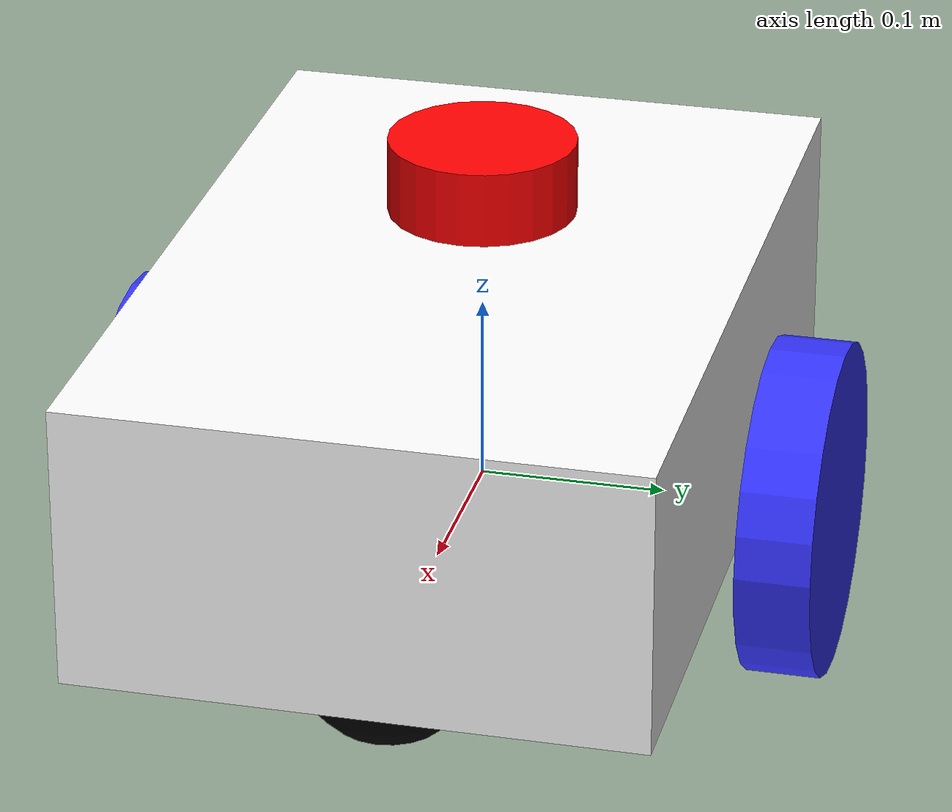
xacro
<?xml version="1.0"?>
<robot xmlns:xacro="http://www.ros.org/wiki/xacro"  name="robot">

    <xacro:arg name="use_ros2_control" default="true"/>
    <xacro:arg name="sim_mode" default="false"/>

    <xacro:include filename="robot_core.xacro" />
    <xacro:include filename="lidar.xacro" />

    <!-- selecting what to run Gazebo or reak robot-->

    <xacro:if value="$(arg use_ros2_control)">
        <xacro:include filename="ros2_control.xacro" />
    </xacro:if>
    <!--Basic Gazebo control without ros2_control -->
    <xacro:unless value="$(arg use_ros2_control)">
        <xacro:include filename="gazebo_control.xacro" />
    </xacro:unless>

</robot>

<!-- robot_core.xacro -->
<robot xmlns:xacro="http://www.ros.org/wiki/xacro" >

    <xacro:include filename="inertial_macros.xacro"/>

<!--Parameters-->
    <xacro:property name="wheel_radius" value="0.09" />`

    <material name="white">
        <color rgba="1 1 1 1" />
    </material>

    <material name="orange">
        <color rgba="1 0.3 0.1 1"/>
    </material>

    <material name="blue">
        <color rgba="0.2 0.2 1 1"/>
    </material>

    <material name="black">
        <color rgba="0 0 0 1"/>
    </material>

    <material name="red">
        <color rgba="1 0 0 1"/>
    </material>

    <!-- BASE LINK -->

    <link name="base_link">

    </link>

    <!-- BASE_FOOTPRINT LINK -->

    <joint name="base_footprint_joint" type="fixed">
        <parent link="base_link"/>
        <child link="base_footprint"/>
        <origin xyz="0 0 0" rpy="0 0 0"/>
    </joint>

    <link name="base_footprint">
    </link>

    <!-- CHASSIS LINK -->

    <joint name="chassis_joint" type="fixed">
        <parent link="base_link"/>
        <child link="chassis"/>
        <origin xyz="-0.1 0 0"/>
    </joint>

    <link name="chassis">
        <visual>
            <origin xyz="0.15 0 0.075"/>
            <geometry>
                <box size="0.45 0.3 0.15"/>
            </geometry>
            <material name="white"/>
        </visual>
        <collision>
            <origin xyz="0.15 0 0.075"/>
            <geometry>
                <box size="0.45 0.3 0.15"/>
            </geometry>
        </collision>
        <xacro:inertial_box mass="0.5" x="0.3" y="0.3" z="0.15">
            <origin xyz="0.15 0 0.075" rpy="0 0 0"/>
        </xacro:inertial_box>
    </link>

    <gazebo reference="chassis">
        <material>Gazebo/White</material>
    </gazebo>

    <!-- LEFT WHEEL LINK -->

    <joint name="left_wheel_joint" type="continuous">
        <parent link="base_link"/>
        <child link="left_wheel"/>
        <origin xyz="0 0.175 0" rpy="-${pi/2} 0 0" />
        <axis xyz="0 0 1"/>
    </joint>

    <link name="left_wheel">
        <visual>
            <geometry>
                <cylinder radius="${wheel_radius}" length="0.04"/>
            </geometry>
            <material name="blue"/>
        </visual>
        <collision>
            <geometry>
                <sphere radius="${wheel_radius}" />
            </geometry>
        </collision>
        <xacro:inertial_cylinder mass="0.1" length="0.04" radius="0.05">
            <origin xyz="0 0 0" rpy="0 0 0"/>
        </xacro:inertial_cylinder>
    </link>
    <gazebo reference="left_wheel">
        <material>Gazebo/Blue</material>
    </gazebo>

    <!-- RIGHT WHEEL LINK -->

    <joint name="right_wheel_joint" type="continuous">
        <parent link="base_link"/>
        <child link="right_wheel"/>
        <origin xyz="0 -0.175 0" rpy="${pi/2} 0 0" />
        <axis xyz="0 0 -1"/>
    </joint>

    <link name="right_wheel">
        <visual>
            <geometry>
                <cylinder radius="${wheel_radius}" length="0.04"/>
            </geometry>
            <material name="blue"/>
        </visual>
        <collision>
            <geometry>
                <sphere radius="${wheel_radius}" />
            </geometry>
        </collision>
        <xacro:inertial_cylinder mass="0.1" length="0.04" radius="0.05">
            <origin xyz="0 0 0" rpy="0 0 0"/>
        </xacro:inertial_cylinder>
    </link>
    <gazebo reference="right_wheel">
        <material>Gazebo/Blue</material>
    </gazebo>

    <!-- CASTER WHEEL LINK -->

    <joint name="caster_wheel_joint" type="fixed">
        <parent link="chassis"/>
        <child link="caster_wheel"/>
        <origin xyz="0.3 0 0"/>
    </joint>

    <link name="caster_wheel">
        <visual>
            <geometry>
                <sphere radius="0.05"/>
            </geometry>
            <material name="black"/>
        </visual>
        <collision>
            <geometry>
                <sphere radius="0.05"/>
            </geometry>
        </collision>
        <xacro:inertial_sphere mass="0.1" radius="0.05">
            <origin xyz="0 0 0" rpy="0 0 0"/>
        </xacro:inertial_sphere>
    </link>
    <gazebo reference="caster_wheel">
        <material>Gazebo/Black</material>
        <mu1 value="0.001"/>
        <mu2 value="0.001"/>

    </gazebo>

</robot>

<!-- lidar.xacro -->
<robot xmlns:xacro="http://www.ros.org/wiki/xacro" >

    <joint name="laser_joint" type="fixed">
        <parent link="chassis"/>
        <child link="laser_frame"/>
        <origin xyz="0.1 0 0.175" rpy="0 0 ${pi}"/>
    </joint>

    <link name="laser_frame">
        <visual>
            <geometry>
                <cylinder radius="0.05" length="0.04"/>
            </geometry>
            <material name="red"/>
        </visual>
        <collision>
            <geometry>
                <cylinder radius="0.05" length="0.04"/>
            </geometry>
        </collision>
        <xacro:inertial_cylinder mass="0.1" length="0.04" radius="0.05">
            <origin xyz="0 0 0" rpy="0 0 0"/>
        </xacro:inertial_cylinder>
    </link>

    <gazebo reference="laser_frame">
        <material>Gazebo/Red</material>
        <sensor name="laser" type="ray">
            <pose> 0 0 0 0 0 0 </pose>
            <visualize>true</visualize>
            <update_rate>10</update_rate>
            <ray>
                <scan>
                    <horizontal>
                        <samples>360</samples>
                        <min_angle>-3.14</min_angle>
                        <max_angle>3.14</max_angle>
                    </horizontal>
                </scan>
                <range>
                    <min>0.3</min>
                    <max>12</max>
                </range>
            </ray>
            <plugin name="laser_controller" filename="libgazebo_ros_ray_sensor.so">
                <ros>
                    <argument>~/out:=scan</argument>
                </ros>
                <output_type>sensor_msgs/LaserScan</output_type>
                <frame_name>laser_frame</frame_name>
            </plugin>
        </sensor>

    </gazebo>
</robot>
